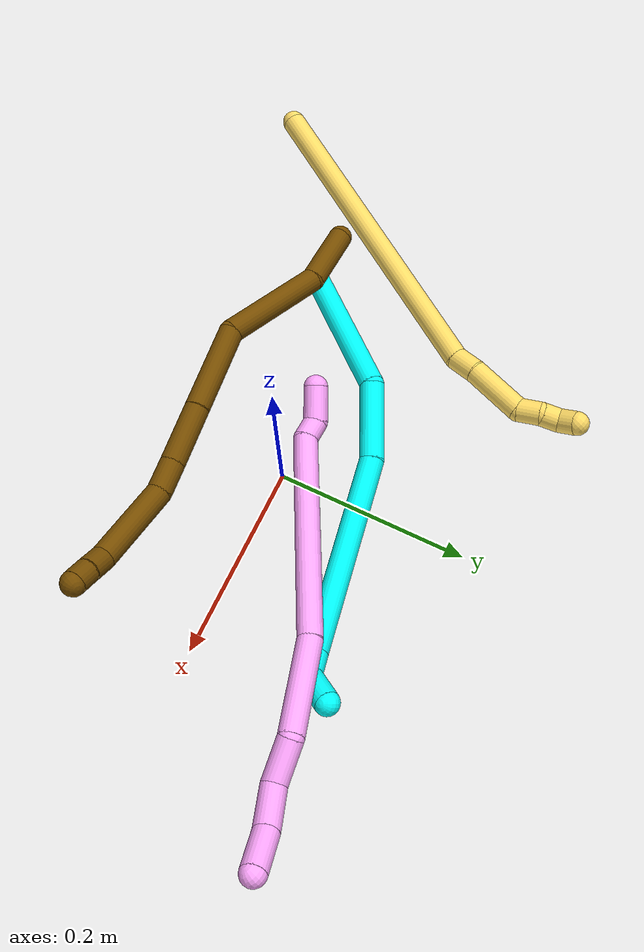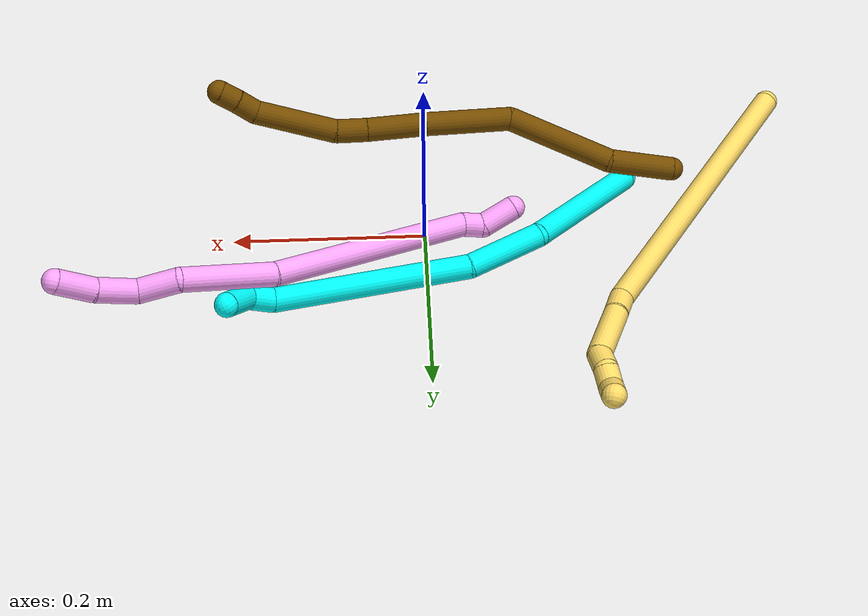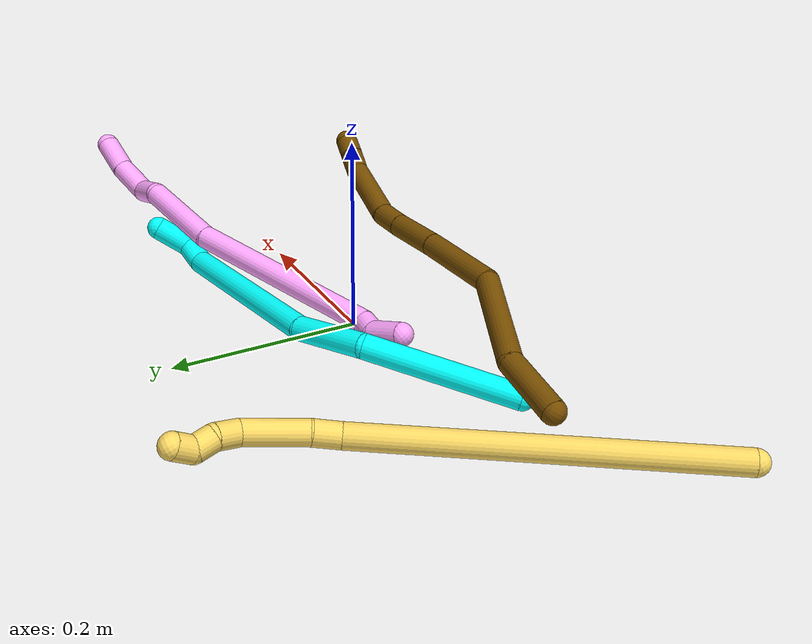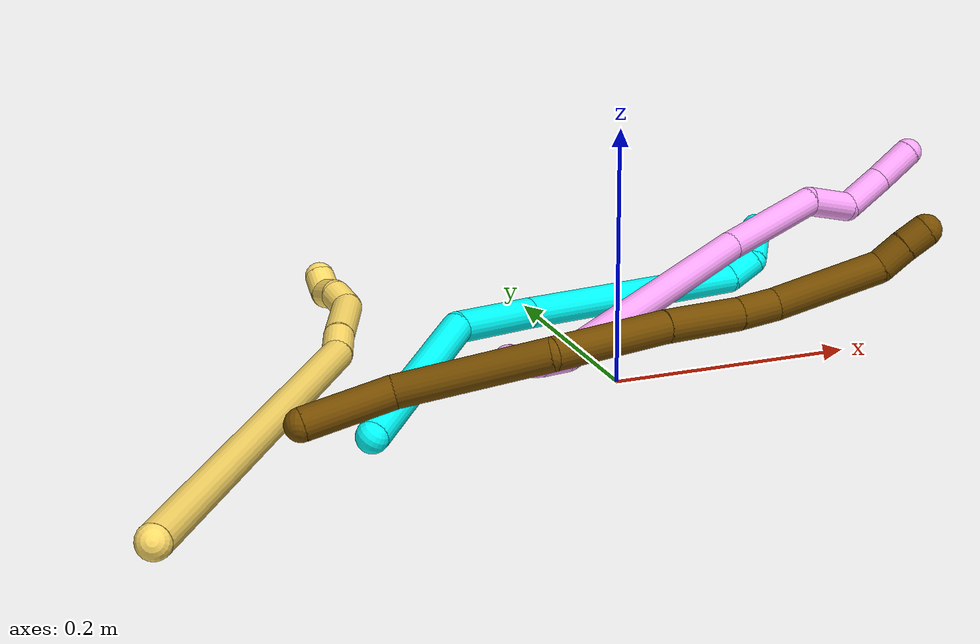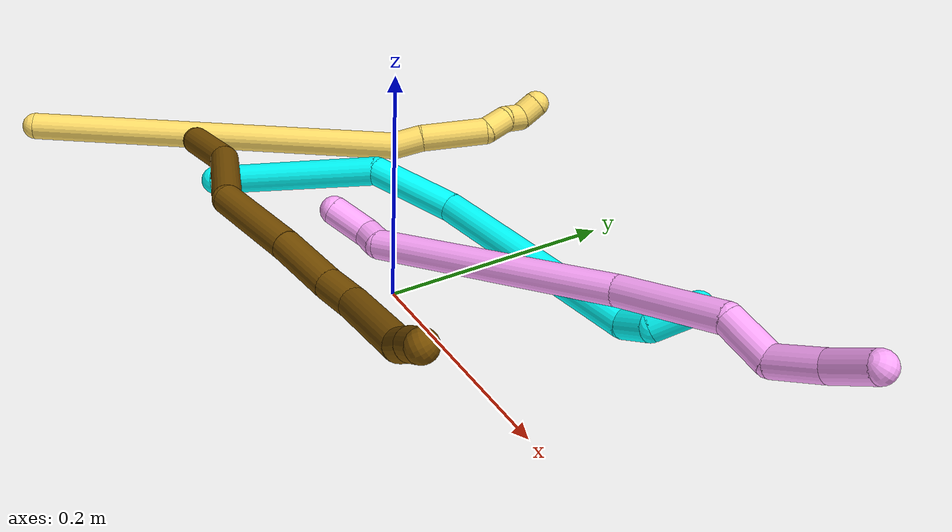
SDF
<sdf version="1.7">
 <world name="default">
  <model name="3">
   <static>0</static>
   <link name="3">
    <collision name="collision-cylinder-e_1_1_4">
     <pose>0.075735 0.001402 -0.014438 -3.04481 1.38155 -3.02455</pose>
     <geometry><cylinder><radius>0.0125</radius><length>0.154224</length></cylinder></geometry>
     <surface>
      <friction><ode><mu>1.16</mu><mu2>1.16</mu2><slip1>0</slip1><slip2>0</slip2></ode></friction>
      <contact><ode><kp>1e+06</kp><kd>1</kd><max_vel>0</max_vel><min_depth>0.001</min_depth></ode></contact>
     </surface>
    </collision>
    <visual name="visual-cylinder-e_1_1_4">
     <pose>0.075735 0.001402 -0.014438 -3.04481 1.38155 -3.02455</pose>
     <geometry><cylinder><radius>0.0125</radius><length>0.154224</length></cylinder></geometry>
     <material><ambient>0.003922 1 0.996078 1</ambient></material>
    </visual>
    <collision name="collision-cylinder-e_2_4_5">
     <pose>0.185566 0.022481 -0.034841 -1.86514 1.02814 -1.30136</pose>
     <geometry><cylinder><radius>0.0125</radius><length>0.079632</length></cylinder></geometry>
     <surface>
      <friction><ode><mu>1.16</mu><mu2>1.16</mu2><slip1>0</slip1><slip2>0</slip2></ode></friction>
      <contact><ode><kp>1e+06</kp><kd>1</kd><max_vel>0</max_vel><min_depth>0.001</min_depth></ode></contact>
     </surface>
    </collision>
    <visual name="visual-cylinder-e_2_4_5">
     <pose>0.185566 0.022481 -0.034841 -1.86514 1.02814 -1.30136</pose>
     <geometry><cylinder><radius>0.0125</radius><length>0.079632</length></cylinder></geometry>
     <material><ambient>0.003922 1 0.996078 1</ambient></material>
    </visual>
    <collision name="collision-cylinder-e_3_5_6">
     <pose>0.29023 0.104209 -0.075378 -2.07911 0.782125 -1.22371</pose>
     <geometry><cylinder><radius>0.0125</radius><length>0.200253</length></cylinder></geometry>
     <surface>
      <friction><ode><mu>1.16</mu><mu2>1.16</mu2><slip1>0</slip1><slip2>0</slip2></ode></friction>
      <contact><ode><kp>1e+06</kp><kd>1</kd><max_vel>0</max_vel><min_depth>0.001</min_depth></ode></contact>
     </surface>
    </collision>
    <visual name="visual-cylinder-e_3_5_6">
     <pose>0.29023 0.104209 -0.075378 -2.07911 0.782125 -1.22371</pose>
     <geometry><cylinder><radius>0.0125</radius><length>0.200253</length></cylinder></geometry>
     <material><ambient>0.003922 1 0.996078 1</ambient></material>
    </visual>
    <collision name="collision-cylinder-e_4_6_7">
     <pose>0.370406 0.170369 -0.119016 -2.71607 0.767684 -2.15924</pose>
     <geometry><cylinder><radius>0.0125</radius><length>0.027668</length></cylinder></geometry>
     <surface>
      <friction><ode><mu>1.16</mu><mu2>1.16</mu2><slip1>0</slip1><slip2>0</slip2></ode></friction>
      <contact><ode><kp>1e+06</kp><kd>1</kd><max_vel>0</max_vel><min_depth>0.001</min_depth></ode></contact>
     </surface>
    </collision>
    <visual name="visual-cylinder-e_4_6_7">
     <pose>0.370406 0.170369 -0.119016 -2.71607 0.767684 -2.15924</pose>
     <geometry><cylinder><radius>0.0125</radius><length>0.027668</length></cylinder></geometry>
     <material><ambient>0.003922 1 0.996078 1</ambient></material>
    </visual>
    <collision name="collision-cylinder-e_5_7_2">
     <pose>0.396969 0.168958 -0.134959 2.4653 1.09123 2.09156</pose>
     <geometry><cylinder><radius>0.0125</radius><length>0.038223</length></cylinder></geometry>
     <surface>
      <friction><ode><mu>1.16</mu><mu2>1.16</mu2><slip1>0</slip1><slip2>0</slip2></ode></friction>
      <contact><ode><kp>1e+06</kp><kd>1</kd><max_vel>0</max_vel><min_depth>0.001</min_depth></ode></contact>
     </surface>
    </collision>
    <visual name="visual-cylinder-e_5_7_2">
     <pose>0.396969 0.168958 -0.134959 2.4653 1.09123 2.09156</pose>
     <geometry><cylinder><radius>0.0125</radius><length>0.038223</length></cylinder></geometry>
     <material><ambient>0.003922 1 0.996078 1</ambient></material>
    </visual>
    <collision name="collision-sphere-2">
     <pose>0.413924 0.163439 -0.141836 0 -0 0</pose>
     <geometry><sphere><radius>0.0125</radius></sphere></geometry>
     <surface>
      <friction><ode><mu>1.16</mu><mu2>1.16</mu2><slip1>0</slip1><slip2>0</slip2></ode></friction>
      <contact><ode><kp>1e+06</kp><kd>1</kd><max_vel>0</max_vel><min_depth>0.001</min_depth></ode></contact>
     </surface>
    </collision>
    <visual name="visual-sphere-2">
     <pose>0.413924 0.163439 -0.141836 0 -0 0</pose>
     <geometry><sphere><radius>0.0125</radius></sphere></geometry>
     <material><ambient>0.003922 1 0.996078 1</ambient></material>
    </visual>
    <collision name="collision-sphere-7">
     <pose>0.380013 0.174478 -0.128082 0 -0 0</pose>
     <geometry><sphere><radius>0.0125</radius></sphere></geometry>
     <surface>
      <friction><ode><mu>1.16</mu><mu2>1.16</mu2><slip1>0</slip1><slip2>0</slip2></ode></friction>
      <contact><ode><kp>1e+06</kp><kd>1</kd><max_vel>0</max_vel><min_depth>0.001</min_depth></ode></contact>
     </surface>
    </collision>
    <visual name="visual-sphere-7">
     <pose>0.380013 0.174478 -0.128082 0 -0 0</pose>
     <geometry><sphere><radius>0.0125</radius></sphere></geometry>
     <material><ambient>0.003922 1 0.996078 1</ambient></material>
    </visual>
    <collision name="collision-sphere-6">
     <pose>0.360799 0.16626 -0.109949 0 -0 0</pose>
     <geometry><sphere><radius>0.0125</radius></sphere></geometry>
     <surface>
      <friction><ode><mu>1.16</mu><mu2>1.16</mu2><slip1>0</slip1><slip2>0</slip2></ode></friction>
      <contact><ode><kp>1e+06</kp><kd>1</kd><max_vel>0</max_vel><min_depth>0.001</min_depth></ode></contact>
     </surface>
    </collision>
    <visual name="visual-sphere-6">
     <pose>0.360799 0.16626 -0.109949 0 -0 0</pose>
     <geometry><sphere><radius>0.0125</radius></sphere></geometry>
     <material><ambient>0.003922 1 0.996078 1</ambient></material>
    </visual>
    <collision name="collision-sphere-5">
     <pose>0.219662 0.042158 -0.040806 0 -0 0</pose>
     <geometry><sphere><radius>0.0125</radius></sphere></geometry>
     <surface>
      <friction><ode><mu>1.16</mu><mu2>1.16</mu2><slip1>0</slip1><slip2>0</slip2></ode></friction>
      <contact><ode><kp>1e+06</kp><kd>1</kd><max_vel>0</max_vel><min_depth>0.001</min_depth></ode></contact>
     </surface>
    </collision>
    <visual name="visual-sphere-5">
     <pose>0.219662 0.042158 -0.040806 0 -0 0</pose>
     <geometry><sphere><radius>0.0125</radius></sphere></geometry>
     <material><ambient>0.003922 1 0.996078 1</ambient></material>
    </visual>
    <collision name="collision-sphere-1">
     <geometry><sphere><radius>0.0125</radius></sphere></geometry>
     <surface>
      <friction><ode><mu>1.16</mu><mu2>1.16</mu2><slip1>0</slip1><slip2>0</slip2></ode></friction>
      <contact><ode><kp>1e+06</kp><kd>1</kd><max_vel>0</max_vel><min_depth>0.001</min_depth></ode></contact>
     </surface>
    </collision>
    <visual name="visual-sphere-1">
     <geometry><sphere><radius>0.0125</radius></sphere></geometry>
     <material><ambient>0.003922 1 0.996078 1</ambient></material>
    </visual>
    <collision name="collision-sphere-4">
     <pose>0.15147 0.002803 -0.028876 0 -0 0</pose>
     <geometry><sphere><radius>0.0125</radius></sphere></geometry>
     <surface>
      <friction><ode><mu>1.16</mu><mu2>1.16</mu2><slip1>0</slip1><slip2>0</slip2></ode></friction>
      <contact><ode><kp>1e+06</kp><kd>1</kd><max_vel>0</max_vel><min_depth>0.001</min_depth></ode></contact>
     </surface>
    </collision>
    <visual name="visual-sphere-4">
     <pose>0.15147 0.002803 -0.028876 0 -0 0</pose>
     <geometry><sphere><radius>0.0125</radius></sphere></geometry>
     <material><ambient>0.003922 1 0.996078 1</ambient></material>
    </visual>
    <inertial>
     <pose>0.219997 0.068093 -0.057095 0 -0 0</pose>
     <mass>0.5</mass>
     <inertia>
      <ixx>-0.000339</ixx>
      <ixy>0</ixy>
      <ixz>0</ixz>
      <iyy>0.000164</iyy>
      <iyz>0</iyz>
      <izz>-0.001287</izz>
     </inertia>
    </inertial>
   </link>
   <pose>-0.216041 -0.065174 0.011895 -2.54782 -0.063786 0.955039</pose>
  </model>
  <model name="4">
   <static>0</static>
   <link name="4">
    <collision name="collision-cylinder-e_1_1_4">
     <pose>0.011294 0.007391 -0.012328 -2.60152 0.666007 -1.79179</pose>
     <geometry><cylinder><radius>0.0125</radius><length>0.03656</length></cylinder></geometry>
     <surface>
      <friction><ode><mu>1.16</mu><mu2>1.16</mu2><slip1>0</slip1><slip2>0</slip2></ode></friction>
      <contact><ode><kp>1e+06</kp><kd>1</kd><max_vel>0</max_vel><min_depth>0.001</min_depth></ode></contact>
     </surface>
    </collision>
    <visual name="visual-cylinder-e_1_1_4">
     <pose>0.011294 0.007391 -0.012328 -2.60152 0.666007 -1.79179</pose>
     <geometry><cylinder><radius>0.0125</radius><length>0.03656</length></cylinder></geometry>
     <material><ambient>1 0.65098 0.996078 1</ambient></material>
    </visual>
    <collision name="collision-cylinder-e_2_4_5">
     <pose>0.031717 0.020318 -0.026303 -1.86007 1.00661 -1.27199</pose>
     <geometry><cylinder><radius>0.0125</radius><length>0.021604</length></cylinder></geometry>
     <surface>
      <friction><ode><mu>1.16</mu><mu2>1.16</mu2><slip1>0</slip1><slip2>0</slip2></ode></friction>
      <contact><ode><kp>1e+06</kp><kd>1</kd><max_vel>0</max_vel><min_depth>0.001</min_depth></ode></contact>
     </surface>
    </collision>
    <visual name="visual-cylinder-e_2_4_5">
     <pose>0.031717 0.020318 -0.026303 -1.86007 1.00661 -1.27199</pose>
     <geometry><cylinder><radius>0.0125</radius><length>0.021604</length></cylinder></geometry>
     <material><ambient>1 0.65098 0.996078 1</ambient></material>
    </visual>
    <collision name="collision-cylinder-e_3_5_6">
     <pose>0.093891 0.108601 -0.075367 -2.09114 0.507602 -0.841717</pose>
     <geometry><cylinder><radius>0.0125</radius><length>0.218259</length></cylinder></geometry>
     <surface>
      <friction><ode><mu>1.16</mu><mu2>1.16</mu2><slip1>0</slip1><slip2>0</slip2></ode></friction>
      <contact><ode><kp>1e+06</kp><kd>1</kd><max_vel>0</max_vel><min_depth>0.001</min_depth></ode></contact>
     </surface>
    </collision>
    <visual name="visual-cylinder-e_3_5_6">
     <pose>0.093891 0.108601 -0.075367 -2.09114 0.507602 -0.841717</pose>
     <geometry><cylinder><radius>0.0125</radius><length>0.218259</length></cylinder></geometry>
     <material><ambient>1 0.65098 0.996078 1</ambient></material>
    </visual>
    <collision name="collision-cylinder-e_4_6_7">
     <pose>0.1761 0.22752 -0.135554 -1.91019 0.650034 -0.889048</pose>
     <geometry><cylinder><radius>0.0125</radius><length>0.096373</length></cylinder></geometry>
     <surface>
      <friction><ode><mu>1.16</mu><mu2>1.16</mu2><slip1>0</slip1><slip2>0</slip2></ode></friction>
      <contact><ode><kp>1e+06</kp><kd>1</kd><max_vel>0</max_vel><min_depth>0.001</min_depth></ode></contact>
     </surface>
    </collision>
    <visual name="visual-cylinder-e_4_6_7">
     <pose>0.1761 0.22752 -0.135554 -1.91019 0.650034 -0.889048</pose>
     <geometry><cylinder><radius>0.0125</radius><length>0.096373</length></cylinder></geometry>
     <material><ambient>1 0.65098 0.996078 1</ambient></material>
    </visual>
    <collision name="collision-cylinder-e_5_7_8">
     <pose>0.223322 0.270502 -0.157644 -2.51049 1.00205 -2.06645</pose>
     <geometry><cylinder><radius>0.0125</radius><length>0.042865</length></cylinder></geometry>
     <surface>
      <friction><ode><mu>1.16</mu><mu2>1.16</mu2><slip1>0</slip1><slip2>0</slip2></ode></friction>
      <contact><ode><kp>1e+06</kp><kd>1</kd><max_vel>0</max_vel><min_depth>0.001</min_depth></ode></contact>
     </surface>
    </collision>
    <visual name="visual-cylinder-e_5_7_8">
     <pose>0.223322 0.270502 -0.157644 -2.51049 1.00205 -2.06645</pose>
     <geometry><cylinder><radius>0.0125</radius><length>0.042865</length></cylinder></geometry>
     <material><ambient>1 0.65098 0.996078 1</ambient></material>
    </visual>
    <collision name="collision-cylinder-e_6_8_9">
     <pose>0.252407 0.295935 -0.170821 -1.77505 0.525471 -0.63817</pose>
     <geometry><cylinder><radius>0.0125</radius><length>0.043966</length></cylinder></geometry>
     <surface>
      <friction><ode><mu>1.16</mu><mu2>1.16</mu2><slip1>0</slip1><slip2>0</slip2></ode></friction>
      <contact><ode><kp>1e+06</kp><kd>1</kd><max_vel>0</max_vel><min_depth>0.001</min_depth></ode></contact>
     </surface>
    </collision>
    <visual name="visual-cylinder-e_6_8_9">
     <pose>0.252407 0.295935 -0.170821 -1.77505 0.525471 -0.63817</pose>
     <geometry><cylinder><radius>0.0125</radius><length>0.043966</length></cylinder></geometry>
     <material><ambient>1 0.65098 0.996078 1</ambient></material>
    </visual>
    <collision name="collision-cylinder-e_7_9_2">
     <pose>0.273678 0.331951 -0.174736 -1.57412 0.532244 -0.533936</pose>
     <geometry><cylinder><radius>0.0125</radius><length>0.040372</length></cylinder></geometry>
     <surface>
      <friction><ode><mu>1.16</mu><mu2>1.16</mu2><slip1>0</slip1><slip2>0</slip2></ode></friction>
      <contact><ode><kp>1e+06</kp><kd>1</kd><max_vel>0</max_vel><min_depth>0.001</min_depth></ode></contact>
     </surface>
    </collision>
    <visual name="visual-cylinder-e_7_9_2">
     <pose>0.273678 0.331951 -0.174736 -1.57412 0.532244 -0.533936</pose>
     <geometry><cylinder><radius>0.0125</radius><length>0.040372</length></cylinder></geometry>
     <material><ambient>1 0.65098 0.996078 1</ambient></material>
    </visual>
    <collision name="collision-sphere-2">
     <pose>0.283922 0.349344 -0.174794 0 -0 0</pose>
     <geometry><sphere><radius>0.0125</radius></sphere></geometry>
     <surface>
      <friction><ode><mu>1.16</mu><mu2>1.16</mu2><slip1>0</slip1><slip2>0</slip2></ode></friction>
      <contact><ode><kp>1e+06</kp><kd>1</kd><max_vel>0</max_vel><min_depth>0.001</min_depth></ode></contact>
     </surface>
    </collision>
    <visual name="visual-sphere-2">
     <pose>0.283922 0.349344 -0.174794 0 -0 0</pose>
     <geometry><sphere><radius>0.0125</radius></sphere></geometry>
     <material><ambient>1 0.65098 0.996078 1</ambient></material>
    </visual>
    <collision name="collision-sphere-9">
     <pose>0.263434 0.314557 -0.174678 0 -0 0</pose>
     <geometry><sphere><radius>0.0125</radius></sphere></geometry>
     <surface>
      <friction><ode><mu>1.16</mu><mu2>1.16</mu2><slip1>0</slip1><slip2>0</slip2></ode></friction>
      <contact><ode><kp>1e+06</kp><kd>1</kd><max_vel>0</max_vel><min_depth>0.001</min_depth></ode></contact>
     </surface>
    </collision>
    <visual name="visual-sphere-9">
     <pose>0.263434 0.314557 -0.174678 0 -0 0</pose>
     <geometry><sphere><radius>0.0125</radius></sphere></geometry>
     <material><ambient>1 0.65098 0.996078 1</ambient></material>
    </visual>
    <collision name="collision-sphere-4">
     <pose>0.022589 0.014782 -0.024656 0 -0 0</pose>
     <geometry><sphere><radius>0.0125</radius></sphere></geometry>
     <surface>
      <friction><ode><mu>1.16</mu><mu2>1.16</mu2><slip1>0</slip1><slip2>0</slip2></ode></friction>
      <contact><ode><kp>1e+06</kp><kd>1</kd><max_vel>0</max_vel><min_depth>0.001</min_depth></ode></contact>
     </surface>
    </collision>
    <visual name="visual-sphere-4">
     <pose>0.022589 0.014782 -0.024656 0 -0 0</pose>
     <geometry><sphere><radius>0.0125</radius></sphere></geometry>
     <material><ambient>1 0.65098 0.996078 1</ambient></material>
    </visual>
    <collision name="collision-sphere-1">
     <geometry><sphere><radius>0.0125</radius></sphere></geometry>
     <surface>
      <friction><ode><mu>1.16</mu><mu2>1.16</mu2><slip1>0</slip1><slip2>0</slip2></ode></friction>
      <contact><ode><kp>1e+06</kp><kd>1</kd><max_vel>0</max_vel><min_depth>0.001</min_depth></ode></contact>
     </surface>
    </collision>
    <visual name="visual-sphere-1">
     <geometry><sphere><radius>0.0125</radius></sphere></geometry>
     <material><ambient>1 0.65098 0.996078 1</ambient></material>
    </visual>
    <collision name="collision-sphere-8">
     <pose>0.24138 0.277313 -0.166963 0 -0 0</pose>
     <geometry><sphere><radius>0.0125</radius></sphere></geometry>
     <surface>
      <friction><ode><mu>1.16</mu><mu2>1.16</mu2><slip1>0</slip1><slip2>0</slip2></ode></friction>
      <contact><ode><kp>1e+06</kp><kd>1</kd><max_vel>0</max_vel><min_depth>0.001</min_depth></ode></contact>
     </surface>
    </collision>
    <visual name="visual-sphere-8">
     <pose>0.24138 0.277313 -0.166963 0 -0 0</pose>
     <geometry><sphere><radius>0.0125</radius></sphere></geometry>
     <material><ambient>1 0.65098 0.996078 1</ambient></material>
    </visual>
    <collision name="collision-sphere-5">
     <pose>0.040845 0.025854 -0.027951 0 -0 0</pose>
     <geometry><sphere><radius>0.0125</radius></sphere></geometry>
     <surface>
      <friction><ode><mu>1.16</mu><mu2>1.16</mu2><slip1>0</slip1><slip2>0</slip2></ode></friction>
      <contact><ode><kp>1e+06</kp><kd>1</kd><max_vel>0</max_vel><min_depth>0.001</min_depth></ode></contact>
     </surface>
    </collision>
    <visual name="visual-sphere-5">
     <pose>0.040845 0.025854 -0.027951 0 -0 0</pose>
     <geometry><sphere><radius>0.0125</radius></sphere></geometry>
     <material><ambient>1 0.65098 0.996078 1</ambient></material>
    </visual>
    <collision name="collision-sphere-6">
     <pose>0.146937 0.191349 -0.122783 0 -0 0</pose>
     <geometry><sphere><radius>0.0125</radius></sphere></geometry>
     <surface>
      <friction><ode><mu>1.16</mu><mu2>1.16</mu2><slip1>0</slip1><slip2>0</slip2></ode></friction>
      <contact><ode><kp>1e+06</kp><kd>1</kd><max_vel>0</max_vel><min_depth>0.001</min_depth></ode></contact>
     </surface>
    </collision>
    <visual name="visual-sphere-6">
     <pose>0.146937 0.191349 -0.122783 0 -0 0</pose>
     <geometry><sphere><radius>0.0125</radius></sphere></geometry>
     <material><ambient>1 0.65098 0.996078 1</ambient></material>
    </visual>
    <collision name="collision-sphere-7">
     <pose>0.205263 0.263691 -0.148324 0 -0 0</pose>
     <geometry><sphere><radius>0.0125</radius></sphere></geometry>
     <surface>
      <friction><ode><mu>1.16</mu><mu2>1.16</mu2><slip1>0</slip1><slip2>0</slip2></ode></friction>
      <contact><ode><kp>1e+06</kp><kd>1</kd><max_vel>0</max_vel><min_depth>0.001</min_depth></ode></contact>
     </surface>
    </collision>
    <visual name="visual-sphere-7">
     <pose>0.205263 0.263691 -0.148324 0 -0 0</pose>
     <geometry><sphere><radius>0.0125</radius></sphere></geometry>
     <material><ambient>1 0.65098 0.996078 1</ambient></material>
    </visual>
    <inertial>
     <pose>0.140562 0.168694 -0.103709 0 -0 0</pose>
     <mass>0.5</mass>
     <inertia>
      <ixx>-5.6e-05</ixx>
      <ixy>0</ixy>
      <ixz>0</ixz>
      <iyy>-0.000591</iyy>
      <iyz>0</iyz>
      <izz>-0.001248</izz>
     </inertia>
    </inertial>
   </link>
   <pose>-0.092265 -0.006538 0.03152 0.885204 0.249037 -0.497146</pose>
  </model>
  <model name="5">
   <static>0</static>
   <link name="5">
    <collision name="collision-cylinder-e_1_1_4">
     <pose>0.070738 0.061344 0.145944 -0.397903 0.420209 -0.085938</pose>
     <geometry><cylinder><radius>0.0125</radius><length>0.346795</length></cylinder></geometry>
     <surface>
      <friction><ode><mu>1.16</mu><mu2>1.16</mu2><slip1>0</slip1><slip2>0</slip2></ode></friction>
      <contact><ode><kp>1e+06</kp><kd>1</kd><max_vel>0</max_vel><min_depth>0.001</min_depth></ode></contact>
     </surface>
    </collision>
    <visual name="visual-cylinder-e_1_1_4">
     <pose>0.070738 0.061344 0.145944 -0.397903 0.420209 -0.085938</pose>
     <geometry><cylinder><radius>0.0125</radius><length>0.346795</length></cylinder></geometry>
     <material><ambient>1 0.858824 0.4 1</ambient></material>
    </visual>
    <collision name="collision-cylinder-e_2_4_5">
     <pose>0.149946 0.123992 0.302423 -0.123192 0.673521 -0.043177</pose>
     <geometry><cylinder><radius>0.0125</radius><length>0.027162</length></cylinder></geometry>
     <surface>
      <friction><ode><mu>1.16</mu><mu2>1.16</mu2><slip1>0</slip1><slip2>0</slip2></ode></friction>
      <contact><ode><kp>1e+06</kp><kd>1</kd><max_vel>0</max_vel><min_depth>0.001</min_depth></ode></contact>
     </surface>
    </collision>
    <visual name="visual-cylinder-e_2_4_5">
     <pose>0.149946 0.123992 0.302423 -0.123192 0.673521 -0.043177</pose>
     <geometry><cylinder><radius>0.0125</radius><length>0.027162</length></cylinder></geometry>
     <material><ambient>1 0.858824 0.4 1</ambient></material>
    </visual>
    <collision name="collision-cylinder-e_3_5_6">
     <pose>0.173706 0.129906 0.339283 -0.173334 0.519623 -0.046183</pose>
     <geometry><cylinder><radius>0.0125</radius><length>0.061579</length></cylinder></geometry>
     <surface>
      <friction><ode><mu>1.16</mu><mu2>1.16</mu2><slip1>0</slip1><slip2>0</slip2></ode></friction>
      <contact><ode><kp>1e+06</kp><kd>1</kd><max_vel>0</max_vel><min_depth>0.001</min_depth></ode></contact>
     </surface>
    </collision>
    <visual name="visual-cylinder-e_3_5_6">
     <pose>0.173706 0.129906 0.339283 -0.173334 0.519623 -0.046183</pose>
     <geometry><cylinder><radius>0.0125</radius><length>0.061579</length></cylinder></geometry>
     <material><ambient>1 0.858824 0.4 1</ambient></material>
    </visual>
    <collision name="collision-cylinder-e_4_6_7">
     <pose>0.196038 0.130159 0.374181 0.470119 0.632182 0.156332</pose>
     <geometry><cylinder><radius>0.0125</radius><length>0.023839</length></cylinder></geometry>
     <surface>
      <friction><ode><mu>1.16</mu><mu2>1.16</mu2><slip1>0</slip1><slip2>0</slip2></ode></friction>
      <contact><ode><kp>1e+06</kp><kd>1</kd><max_vel>0</max_vel><min_depth>0.001</min_depth></ode></contact>
     </surface>
    </collision>
    <visual name="visual-cylinder-e_4_6_7">
     <pose>0.196038 0.130159 0.374181 0.470119 0.632182 0.156332</pose>
     <geometry><cylinder><radius>0.0125</radius><length>0.023839</length></cylinder></geometry>
     <material><ambient>1 0.858824 0.4 1</ambient></material>
    </visual>
    <collision name="collision-cylinder-e_5_7_8">
     <pose>0.205187 0.121912 0.39193 0.401011 0.208176 0.042456</pose>
     <geometry><cylinder><radius>0.0125</radius><length>0.020375</length></cylinder></geometry>
     <surface>
      <friction><ode><mu>1.16</mu><mu2>1.16</mu2><slip1>0</slip1><slip2>0</slip2></ode></friction>
      <contact><ode><kp>1e+06</kp><kd>1</kd><max_vel>0</max_vel><min_depth>0.001</min_depth></ode></contact>
     </surface>
    </collision>
    <visual name="visual-cylinder-e_5_7_8">
     <pose>0.205187 0.121912 0.39193 0.401011 0.208176 0.042456</pose>
     <geometry><cylinder><radius>0.0125</radius><length>0.020375</length></cylinder></geometry>
     <material><ambient>1 0.858824 0.4 1</ambient></material>
    </visual>
    <collision name="collision-cylinder-e_6_8_2">
     <pose>0.215537 0.115917 0.406595 0.366203 0.951532 0.190244</pose>
     <geometry><cylinder><radius>0.0125</radius><length>0.020251</length></cylinder></geometry>
     <surface>
      <friction><ode><mu>1.16</mu><mu2>1.16</mu2><slip1>0</slip1><slip2>0</slip2></ode></friction>
      <contact><ode><kp>1e+06</kp><kd>1</kd><max_vel>0</max_vel><min_depth>0.001</min_depth></ode></contact>
     </surface>
    </collision>
    <visual name="visual-cylinder-e_6_8_2">
     <pose>0.215537 0.115917 0.406595 0.366203 0.951532 0.190244</pose>
     <geometry><cylinder><radius>0.0125</radius><length>0.020251</length></cylinder></geometry>
     <material><ambient>1 0.858824 0.4 1</ambient></material>
    </visual>
    <collision name="collision-sphere-2">
     <pose>0.223782 0.113812 0.412082 0 -0 0</pose>
     <geometry><sphere><radius>0.0125</radius></sphere></geometry>
     <surface>
      <friction><ode><mu>1.16</mu><mu2>1.16</mu2><slip1>0</slip1><slip2>0</slip2></ode></friction>
      <contact><ode><kp>1e+06</kp><kd>1</kd><max_vel>0</max_vel><min_depth>0.001</min_depth></ode></contact>
     </surface>
    </collision>
    <visual name="visual-sphere-2">
     <pose>0.223782 0.113812 0.412082 0 -0 0</pose>
     <geometry><sphere><radius>0.0125</radius></sphere></geometry>
     <material><ambient>1 0.858824 0.4 1</ambient></material>
    </visual>
    <collision name="collision-sphere-4">
     <pose>0.141475 0.122688 0.291889 0 -0 0</pose>
     <geometry><sphere><radius>0.0125</radius></sphere></geometry>
     <surface>
      <friction><ode><mu>1.16</mu><mu2>1.16</mu2><slip1>0</slip1><slip2>0</slip2></ode></friction>
      <contact><ode><kp>1e+06</kp><kd>1</kd><max_vel>0</max_vel><min_depth>0.001</min_depth></ode></contact>
     </surface>
    </collision>
    <visual name="visual-sphere-4">
     <pose>0.141475 0.122688 0.291889 0 -0 0</pose>
     <geometry><sphere><radius>0.0125</radius></sphere></geometry>
     <material><ambient>1 0.858824 0.4 1</ambient></material>
    </visual>
    <collision name="collision-sphere-1">
     <geometry><sphere><radius>0.0125</radius></sphere></geometry>
     <surface>
      <friction><ode><mu>1.16</mu><mu2>1.16</mu2><slip1>0</slip1><slip2>0</slip2></ode></friction>
      <contact><ode><kp>1e+06</kp><kd>1</kd><max_vel>0</max_vel><min_depth>0.001</min_depth></ode></contact>
     </surface>
    </collision>
    <visual name="visual-sphere-1">
     <geometry><sphere><radius>0.0125</radius></sphere></geometry>
     <material><ambient>1 0.858824 0.4 1</ambient></material>
    </visual>
    <collision name="collision-sphere-8">
     <pose>0.207292 0.118021 0.401107 0 -0 0</pose>
     <geometry><sphere><radius>0.0125</radius></sphere></geometry>
     <surface>
      <friction><ode><mu>1.16</mu><mu2>1.16</mu2><slip1>0</slip1><slip2>0</slip2></ode></friction>
      <contact><ode><kp>1e+06</kp><kd>1</kd><max_vel>0</max_vel><min_depth>0.001</min_depth></ode></contact>
     </surface>
    </collision>
    <visual name="visual-sphere-8">
     <pose>0.207292 0.118021 0.401107 0 -0 0</pose>
     <geometry><sphere><radius>0.0125</radius></sphere></geometry>
     <material><ambient>1 0.858824 0.4 1</ambient></material>
    </visual>
    <collision name="collision-sphere-5">
     <pose>0.158417 0.125296 0.312958 0 -0 0</pose>
     <geometry><sphere><radius>0.0125</radius></sphere></geometry>
     <surface>
      <friction><ode><mu>1.16</mu><mu2>1.16</mu2><slip1>0</slip1><slip2>0</slip2></ode></friction>
      <contact><ode><kp>1e+06</kp><kd>1</kd><max_vel>0</max_vel><min_depth>0.001</min_depth></ode></contact>
     </surface>
    </collision>
    <visual name="visual-sphere-5">
     <pose>0.158417 0.125296 0.312958 0 -0 0</pose>
     <geometry><sphere><radius>0.0125</radius></sphere></geometry>
     <material><ambient>1 0.858824 0.4 1</ambient></material>
    </visual>
    <collision name="collision-sphere-6">
     <pose>0.188994 0.134515 0.365608 0 -0 0</pose>
     <geometry><sphere><radius>0.0125</radius></sphere></geometry>
     <surface>
      <friction><ode><mu>1.16</mu><mu2>1.16</mu2><slip1>0</slip1><slip2>0</slip2></ode></friction>
      <contact><ode><kp>1e+06</kp><kd>1</kd><max_vel>0</max_vel><min_depth>0.001</min_depth></ode></contact>
     </surface>
    </collision>
    <visual name="visual-sphere-6">
     <pose>0.188994 0.134515 0.365608 0 -0 0</pose>
     <geometry><sphere><radius>0.0125</radius></sphere></geometry>
     <material><ambient>1 0.858824 0.4 1</ambient></material>
    </visual>
    <collision name="collision-sphere-7">
     <pose>0.203081 0.125803 0.382753 0 -0 0</pose>
     <geometry><sphere><radius>0.0125</radius></sphere></geometry>
     <surface>
      <friction><ode><mu>1.16</mu><mu2>1.16</mu2><slip1>0</slip1><slip2>0</slip2></ode></friction>
      <contact><ode><kp>1e+06</kp><kd>1</kd><max_vel>0</max_vel><min_depth>0.001</min_depth></ode></contact>
     </surface>
    </collision>
    <visual name="visual-sphere-7">
     <pose>0.203081 0.125803 0.382753 0 -0 0</pose>
     <geometry><sphere><radius>0.0125</radius></sphere></geometry>
     <material><ambient>1 0.858824 0.4 1</ambient></material>
    </visual>
    <inertial>
     <pose>0.105039 0.08115 0.209718 0 -0 0</pose>
     <mass>0.5</mass>
     <inertia>
      <ixx>0.002943</ixx>
      <ixy>0</ixy>
      <ixz>0</ixz>
      <iyy>0.003016</iyy>
      <iyz>0</iyz>
      <izz>-0.002643</izz>
     </inertia>
    </inertial>
   </link>
   <pose>-0.388502 -0.179419 0.01302 3.11185 -1.1096 1.3647</pose>
  </model>
  <model name="12">
   <static>0</static>
   <link name="12">
    <collision name="collision-cylinder-e_1_1_4">
     <pose>0.030067 -0.002778 0.016492 0.166864 1.06317 0.098274</pose>
     <geometry><cylinder><radius>0.0125</radius><length>0.06881</length></cylinder></geometry>
     <surface>
      <friction><ode><mu>1.16</mu><mu2>1.16</mu2><slip1>0</slip1><slip2>0</slip2></ode></friction>
      <contact><ode><kp>1e+06</kp><kd>1</kd><max_vel>0</max_vel><min_depth>0.001</min_depth></ode></contact>
     </surface>
    </collision>
    <visual name="visual-cylinder-e_1_1_4">
     <pose>0.030067 -0.002778 0.016492 0.166864 1.06317 0.098274</pose>
     <geometry><cylinder><radius>0.0125</radius><length>0.06881</length></cylinder></geometry>
     <material><ambient>0.466667 0.301961 0 1</ambient></material>
    </visual>
    <collision name="collision-cylinder-e_2_4_5">
     <pose>0.113598 -0.022668 0.044236 0.989148 1.20497 0.710362</pose>
     <geometry><cylinder><radius>0.0125</radius><length>0.114507</length></cylinder></geometry>
     <surface>
      <friction><ode><mu>1.16</mu><mu2>1.16</mu2><slip1>0</slip1><slip2>0</slip2></ode></friction>
      <contact><ode><kp>1e+06</kp><kd>1</kd><max_vel>0</max_vel><min_depth>0.001</min_depth></ode></contact>
     </surface>
    </collision>
    <visual name="visual-cylinder-e_2_4_5">
     <pose>0.113598 -0.022668 0.044236 0.989148 1.20497 0.710362</pose>
     <geometry><cylinder><radius>0.0125</radius><length>0.114507</length></cylinder></geometry>
     <material><ambient>0.466667 0.301961 0 1</ambient></material>
    </visual>
    <collision name="collision-cylinder-e_3_5_6">
     <pose>0.206761 -0.034707 0.077971 -0.221965 1.04477 -0.128145</pose>
     <geometry><cylinder><radius>0.0125</radius><length>0.091807</length></cylinder></geometry>
     <surface>
      <friction><ode><mu>1.16</mu><mu2>1.16</mu2><slip1>0</slip1><slip2>0</slip2></ode></friction>
      <contact><ode><kp>1e+06</kp><kd>1</kd><max_vel>0</max_vel><min_depth>0.001</min_depth></ode></contact>
     </surface>
    </collision>
    <visual name="visual-cylinder-e_3_5_6">
     <pose>0.206761 -0.034707 0.077971 -0.221965 1.04477 -0.128145</pose>
     <geometry><cylinder><radius>0.0125</radius><length>0.091807</length></cylinder></geometry>
     <material><ambient>0.466667 0.301961 0 1</ambient></material>
    </visual>
    <collision name="collision-cylinder-e_4_6_7">
     <pose>0.273535 -0.024977 0.114306 -0.324259 1.07587 -0.194558</pose>
     <geometry><cylinder><radius>0.0125</radius><length>0.061536</length></cylinder></geometry>
     <surface>
      <friction><ode><mu>1.16</mu><mu2>1.16</mu2><slip1>0</slip1><slip2>0</slip2></ode></friction>
      <contact><ode><kp>1e+06</kp><kd>1</kd><max_vel>0</max_vel><min_depth>0.001</min_depth></ode></contact>
     </surface>
    </collision>
    <visual name="visual-cylinder-e_4_6_7">
     <pose>0.273535 -0.024977 0.114306 -0.324259 1.07587 -0.194558</pose>
     <geometry><cylinder><radius>0.0125</radius><length>0.061536</length></cylinder></geometry>
     <material><ambient>0.466667 0.301961 0 1</ambient></material>
    </visual>
    <collision name="collision-cylinder-e_5_7_8">
     <pose>0.314727 -0.018816 0.136225 -0.184441 1.04422 -0.106323</pose>
     <geometry><cylinder><radius>0.0125</radius><length>0.032657</length></cylinder></geometry>
     <surface>
      <friction><ode><mu>1.16</mu><mu2>1.16</mu2><slip1>0</slip1><slip2>0</slip2></ode></friction>
      <contact><ode><kp>1e+06</kp><kd>1</kd><max_vel>0</max_vel><min_depth>0.001</min_depth></ode></contact>
     </surface>
    </collision>
    <visual name="visual-cylinder-e_5_7_8">
     <pose>0.314727 -0.018816 0.136225 -0.184441 1.04422 -0.106323</pose>
     <geometry><cylinder><radius>0.0125</radius><length>0.032657</length></cylinder></geometry>
     <material><ambient>0.466667 0.301961 0 1</ambient></material>
    </visual>
    <collision name="collision-cylinder-e_6_8_9">
     <pose>0.367362 -0.02494 0.162257 0.401579 1.10181 0.248788</pose>
     <geometry><cylinder><radius>0.0125</radius><length>0.086363</length></cylinder></geometry>
     <surface>
      <friction><ode><mu>1.16</mu><mu2>1.16</mu2><slip1>0</slip1><slip2>0</slip2></ode></friction>
      <contact><ode><kp>1e+06</kp><kd>1</kd><max_vel>0</max_vel><min_depth>0.001</min_depth></ode></contact>
     </surface>
    </collision>
    <visual name="visual-cylinder-e_6_8_9">
     <pose>0.367362 -0.02494 0.162257 0.401579 1.10181 0.248788</pose>
     <geometry><cylinder><radius>0.0125</radius><length>0.086363</length></cylinder></geometry>
     <material><ambient>0.466667 0.301961 0 1</ambient></material>
    </visual>
    <collision name="collision-cylinder-e_7_9_10">
     <pose>0.414051 -0.038229 0.186783 0.711797 0.755968 0.293092</pose>
     <geometry><cylinder><radius>0.0125</radius><length>0.023819</length></cylinder></geometry>
     <surface>
      <friction><ode><mu>1.16</mu><mu2>1.16</mu2><slip1>0</slip1><slip2>0</slip2></ode></friction>
      <contact><ode><kp>1e+06</kp><kd>1</kd><max_vel>0</max_vel><min_depth>0.001</min_depth></ode></contact>
     </surface>
    </collision>
    <visual name="visual-cylinder-e_7_9_10">
     <pose>0.414051 -0.038229 0.186783 0.711797 0.755968 0.293092</pose>
     <geometry><cylinder><radius>0.0125</radius><length>0.023819</length></cylinder></geometry>
     <material><ambient>0.466667 0.301961 0 1</ambient></material>
    </visual>
    <collision name="collision-cylinder-e_8_10_2">
     <pose>0.429767 -0.048276 0.19872 0.684488 0.827273 0.310259</pose>
     <geometry><cylinder><radius>0.0125</radius><length>0.020501</length></cylinder></geometry>
     <surface>
      <friction><ode><mu>1.16</mu><mu2>1.16</mu2><slip1>0</slip1><slip2>0</slip2></ode></friction>
      <contact><ode><kp>1e+06</kp><kd>1</kd><max_vel>0</max_vel><min_depth>0.001</min_depth></ode></contact>
     </surface>
    </collision>
    <visual name="visual-cylinder-e_8_10_2">
     <pose>0.429767 -0.048276 0.19872 0.684488 0.827273 0.310259</pose>
     <geometry><cylinder><radius>0.0125</radius><length>0.020501</length></cylinder></geometry>
     <material><ambient>0.466667 0.301961 0 1</ambient></material>
    </visual>
    <collision name="collision-sphere-2">
     <pose>0.437312 -0.052664 0.204095 0 -0 0</pose>
     <geometry><sphere><radius>0.0125</radius></sphere></geometry>
     <surface>
      <friction><ode><mu>1.16</mu><mu2>1.16</mu2><slip1>0</slip1><slip2>0</slip2></ode></friction>
      <contact><ode><kp>1e+06</kp><kd>1</kd><max_vel>0</max_vel><min_depth>0.001</min_depth></ode></contact>
     </surface>
    </collision>
    <visual name="visual-sphere-2">
     <pose>0.437312 -0.052664 0.204095 0 -0 0</pose>
     <geometry><sphere><radius>0.0125</radius></sphere></geometry>
     <material><ambient>0.466667 0.301961 0 1</ambient></material>
    </visual>
    <collision name="collision-sphere-10">
     <pose>0.422221 -0.043889 0.193344 0 -0 0</pose>
     <geometry><sphere><radius>0.0125</radius></sphere></geometry>
     <surface>
      <friction><ode><mu>1.16</mu><mu2>1.16</mu2><slip1>0</slip1><slip2>0</slip2></ode></friction>
      <contact><ode><kp>1e+06</kp><kd>1</kd><max_vel>0</max_vel><min_depth>0.001</min_depth></ode></contact>
     </surface>
    </collision>
    <visual name="visual-sphere-10">
     <pose>0.422221 -0.043889 0.193344 0 -0 0</pose>
     <geometry><sphere><radius>0.0125</radius></sphere></geometry>
     <material><ambient>0.466667 0.301961 0 1</ambient></material>
    </visual>
    <collision name="collision-sphere-9">
     <pose>0.405882 -0.032569 0.180221 0 -0 0</pose>
     <geometry><sphere><radius>0.0125</radius></sphere></geometry>
     <surface>
      <friction><ode><mu>1.16</mu><mu2>1.16</mu2><slip1>0</slip1><slip2>0</slip2></ode></friction>
      <contact><ode><kp>1e+06</kp><kd>1</kd><max_vel>0</max_vel><min_depth>0.001</min_depth></ode></contact>
     </surface>
    </collision>
    <visual name="visual-sphere-9">
     <pose>0.405882 -0.032569 0.180221 0 -0 0</pose>
     <geometry><sphere><radius>0.0125</radius></sphere></geometry>
     <material><ambient>0.466667 0.301961 0 1</ambient></material>
    </visual>
    <collision name="collision-sphere-4">
     <pose>0.060133 -0.005555 0.032984 0 -0 0</pose>
     <geometry><sphere><radius>0.0125</radius></sphere></geometry>
     <surface>
      <friction><ode><mu>1.16</mu><mu2>1.16</mu2><slip1>0</slip1><slip2>0</slip2></ode></friction>
      <contact><ode><kp>1e+06</kp><kd>1</kd><max_vel>0</max_vel><min_depth>0.001</min_depth></ode></contact>
     </surface>
    </collision>
    <visual name="visual-sphere-4">
     <pose>0.060133 -0.005555 0.032984 0 -0 0</pose>
     <geometry><sphere><radius>0.0125</radius></sphere></geometry>
     <material><ambient>0.466667 0.301961 0 1</ambient></material>
    </visual>
    <collision name="collision-sphere-1">
     <geometry><sphere><radius>0.0125</radius></sphere></geometry>
     <surface>
      <friction><ode><mu>1.16</mu><mu2>1.16</mu2><slip1>0</slip1><slip2>0</slip2></ode></friction>
      <contact><ode><kp>1e+06</kp><kd>1</kd><max_vel>0</max_vel><min_depth>0.001</min_depth></ode></contact>
     </surface>
    </collision>
    <visual name="visual-sphere-1">
     <geometry><sphere><radius>0.0125</radius></sphere></geometry>
     <material><ambient>0.466667 0.301961 0 1</ambient></material>
    </visual>
    <collision name="collision-sphere-8">
     <pose>0.328843 -0.017311 0.144292 0 -0 0</pose>
     <geometry><sphere><radius>0.0125</radius></sphere></geometry>
     <surface>
      <friction><ode><mu>1.16</mu><mu2>1.16</mu2><slip1>0</slip1><slip2>0</slip2></ode></friction>
      <contact><ode><kp>1e+06</kp><kd>1</kd><max_vel>0</max_vel><min_depth>0.001</min_depth></ode></contact>
     </surface>
    </collision>
    <visual name="visual-sphere-8">
     <pose>0.328843 -0.017311 0.144292 0 -0 0</pose>
     <geometry><sphere><radius>0.0125</radius></sphere></geometry>
     <material><ambient>0.466667 0.301961 0 1</ambient></material>
    </visual>
    <collision name="collision-sphere-5">
     <pose>0.167064 -0.039781 0.055488 0 -0 0</pose>
     <geometry><sphere><radius>0.0125</radius></sphere></geometry>
     <surface>
      <friction><ode><mu>1.16</mu><mu2>1.16</mu2><slip1>0</slip1><slip2>0</slip2></ode></friction>
      <contact><ode><kp>1e+06</kp><kd>1</kd><max_vel>0</max_vel><min_depth>0.001</min_depth></ode></contact>
     </surface>
    </collision>
    <visual name="visual-sphere-5">
     <pose>0.167064 -0.039781 0.055488 0 -0 0</pose>
     <geometry><sphere><radius>0.0125</radius></sphere></geometry>
     <material><ambient>0.466667 0.301961 0 1</ambient></material>
    </visual>
    <collision name="collision-sphere-6">
     <pose>0.246459 -0.029633 0.100453 0 -0 0</pose>
     <geometry><sphere><radius>0.0125</radius></sphere></geometry>
     <surface>
      <friction><ode><mu>1.16</mu><mu2>1.16</mu2><slip1>0</slip1><slip2>0</slip2></ode></friction>
      <contact><ode><kp>1e+06</kp><kd>1</kd><max_vel>0</max_vel><min_depth>0.001</min_depth></ode></contact>
     </surface>
    </collision>
    <visual name="visual-sphere-6">
     <pose>0.246459 -0.029633 0.100453 0 -0 0</pose>
     <geometry><sphere><radius>0.0125</radius></sphere></geometry>
     <material><ambient>0.466667 0.301961 0 1</ambient></material>
    </visual>
    <collision name="collision-sphere-7">
     <pose>0.300611 -0.020321 0.128158 0 -0 0</pose>
     <geometry><sphere><radius>0.0125</radius></sphere></geometry>
     <surface>
      <friction><ode><mu>1.16</mu><mu2>1.16</mu2><slip1>0</slip1><slip2>0</slip2></ode></friction>
      <contact><ode><kp>1e+06</kp><kd>1</kd><max_vel>0</max_vel><min_depth>0.001</min_depth></ode></contact>
     </surface>
    </collision>
    <visual name="visual-sphere-7">
     <pose>0.300611 -0.020321 0.128158 0 -0 0</pose>
     <geometry><sphere><radius>0.0125</radius></sphere></geometry>
     <material><ambient>0.466667 0.301961 0 1</ambient></material>
    </visual>
    <inertial>
     <pose>0.223137 -0.024358 0.094754 0 -0 0</pose>
     <mass>0.5</mass>
     <inertia>
      <ixx>0.000189</ixx>
      <ixy>0</ixy>
      <ixz>0</ixz>
      <iyy>0.00033</iyy>
      <iyz>0</iyz>
      <izz>-0.000225</izz>
     </inertia>
    </inertial>
   </link>
   <pose>-0.265942 -0.061967 0.026932 -1.01971 0.119012 -0.383349</pose>
  </model>
 </world>
</sdf>
